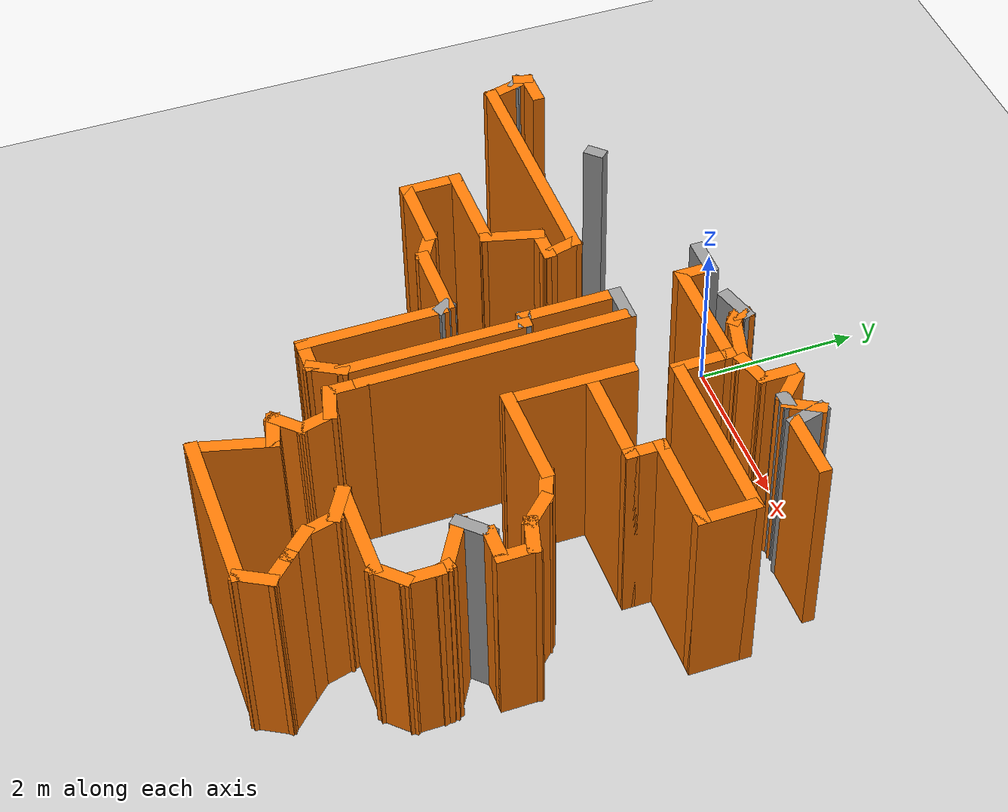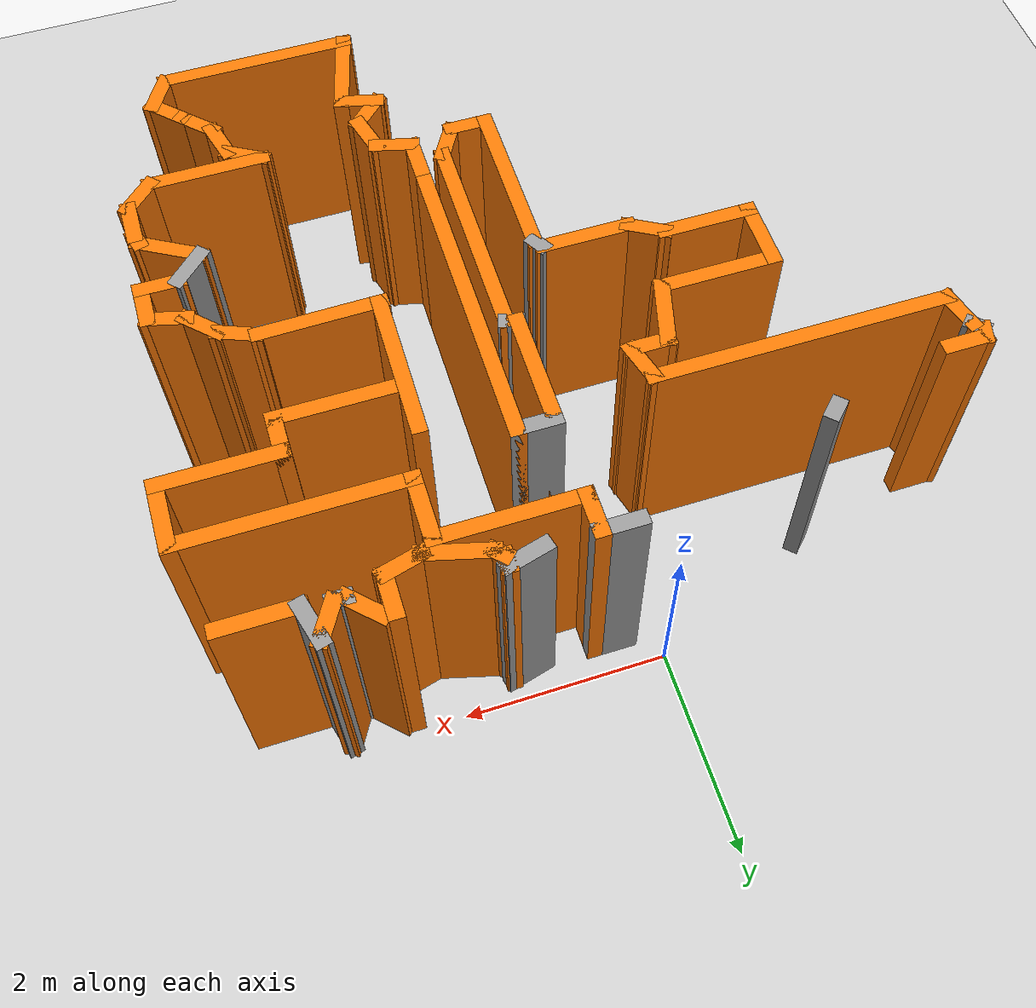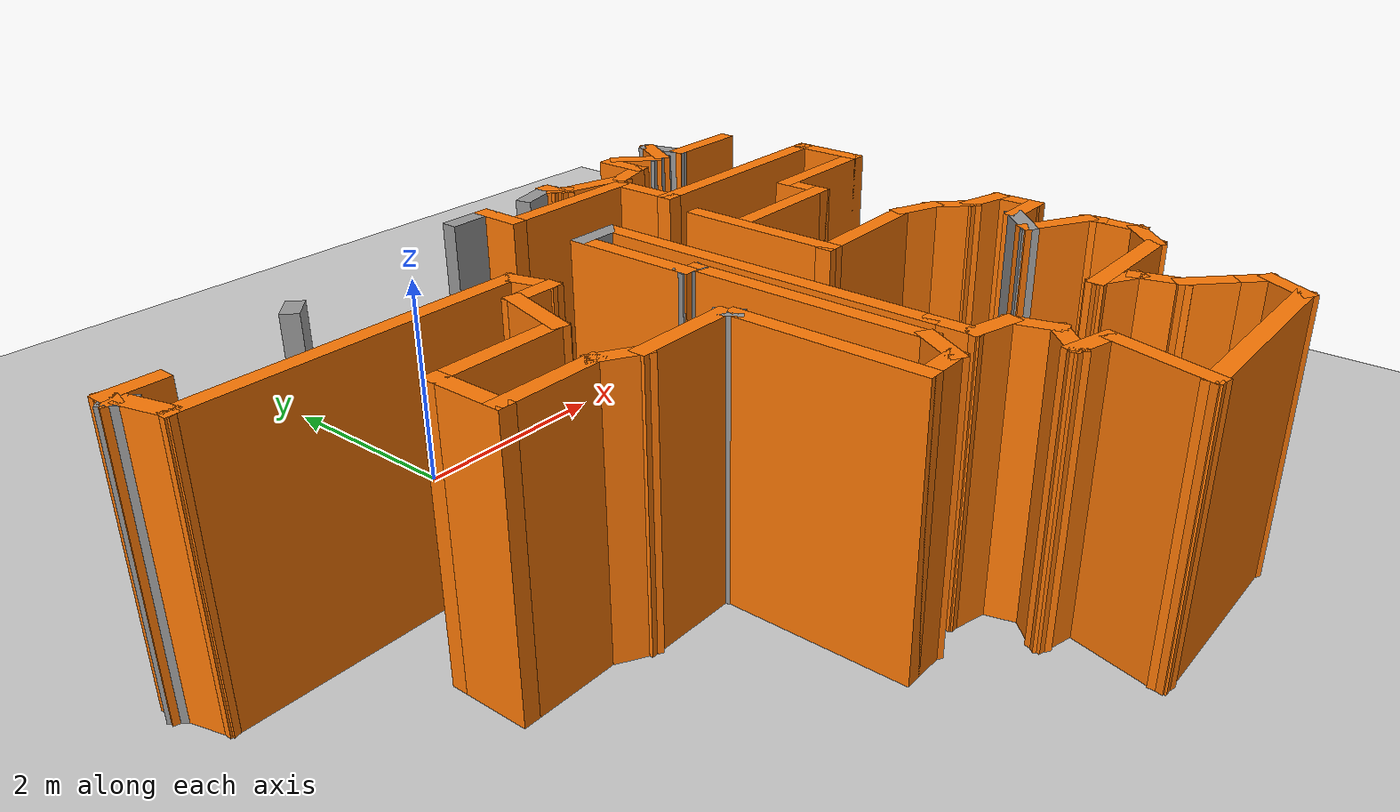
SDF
<sdf version="1.7">
 <world name="default">
  <model name="ground_plane">
   <static>1</static>
   <link name="link">
    <collision name="collision">
     <geometry><plane><normal>0 0 1</normal><size>100 100</size></plane></geometry>
     <surface>
      <contact><collide_bitmask>65535</collide_bitmask></contact>
      <friction><ode><mu>100</mu><mu2>50</mu2></ode></friction>
     </surface>
    </collision>
    <visual name="visual">
     <cast_shadows>0</cast_shadows>
     <geometry><plane><normal>0 0 1</normal><size>100 100</size></plane></geometry>
     <material>
      <script><uri>file://media/materials/scripts/gazebo.material</uri><name>Gazebo/Grey</name></script>
     </material>
    </visual>
   </link>
  </model>
  <model name="map_4">
   <pose>0.04124 -0.27835 0 0 -0 0</pose>
   <link name="Wall_100">
    <collision name="Wall_100_Collision">
     <geometry><box><size>0.5 0.15 2.5</size></box></geometry>
     <pose>0 0 1.25 0 -0 0</pose>
    </collision>
    <visual name="Wall_100_Visual">
     <pose>0 0 1.25 0 -0 0</pose>
     <geometry><box><size>0.5 0.15 2.5</size></box></geometry>
     <material>
      <script><uri>file://media/materials/scripts/gazebo.material</uri><name>Gazebo/Grey</name></script>
      <ambient>0.996078 0.47451 0.0196078 1</ambient>
     </material>
     <meta><layer>0</layer></meta>
    </visual>
    <pose>3.63966 -3.64447 0 0 -0 0</pose>
   </link>
   <link name="Wall_101">
    <collision name="Wall_101_Collision">
     <geometry><box><size>0.5 0.15 2.5</size></box></geometry>
     <pose>0 0 1.25 0 -0 0</pose>
    </collision>
    <visual name="Wall_101_Visual">
     <pose>0 0 1.25 0 -0 0</pose>
     <geometry><box><size>0.5 0.15 2.5</size></box></geometry>
     <material>
      <script><uri>file://media/materials/scripts/gazebo.material</uri><name>Gazebo/Grey</name></script>
      <ambient>0.996078 0.47451 0.0196078 1</ambient>
     </material>
     <meta><layer>0</layer></meta>
    </visual>
    <pose>3.81466 -3.46947 0 0 -0 1.5708</pose>
   </link>
   <link name="Wall_102">
    <collision name="Wall_102_Collision">
     <geometry><box><size>0.5 0.15 2.5</size></box></geometry>
     <pose>0 0 1.25 0 -0 0</pose>
    </collision>
    <visual name="Wall_102_Visual">
     <pose>0 0 1.25 0 -0 0</pose>
     <geometry><box><size>0.5 0.15 2.5</size></box></geometry>
     <material>
      <script><uri>file://media/materials/scripts/gazebo.material</uri><name>Gazebo/Grey</name></script>
      <ambient>0.996078 0.47451 0.0196078 1</ambient>
     </material>
     <meta><layer>0</layer></meta>
    </visual>
    <pose>3.64562 -3.24918 0 0 -0 2.87979</pose>
   </link>
   <link name="Wall_103">
    <collision name="Wall_103_Collision">
     <geometry><box><size>0.5 0.15 2.5</size></box></geometry>
     <pose>0 0 1.25 0 -0 0</pose>
    </collision>
    <visual name="Wall_103_Visual">
     <pose>0 0 1.25 0 -0 0</pose>
     <geometry><box><size>0.5 0.15 2.5</size></box></geometry>
     <material>
      <script><uri>file://media/materials/scripts/gazebo.material</uri><name>Gazebo/Grey</name></script>
      <ambient>0.996078 0.47451 0.0196078 1</ambient>
     </material>
     <meta><layer>0</layer></meta>
    </visual>
    <pose>3.35284 -3.08014 0 0 -0 2.35619</pose>
   </link>
   <link name="Wall_104">
    <collision name="Wall_104_Collision">
     <geometry><box><size>0.493604 0.15 2.5</size></box></geometry>
     <pose>0 0 1.25 0 -0 0</pose>
    </collision>
    <visual name="Wall_104_Visual">
     <pose>0 0 1.25 0 -0 0</pose>
     <geometry><box><size>0.493604 0.15 2.5</size></box></geometry>
     <material>
      <script><uri>file://media/materials/scripts/gazebo.material</uri><name>Gazebo/Grey</name></script>
      <ambient>0.996078 0.47451 0.0196078 1</ambient>
     </material>
     <meta><layer>0</layer></meta>
    </visual>
    <pose>3.06994 -2.89171 0 0 -0 2.75556</pose>
   </link>
   <link name="Wall_105">
    <collision name="Wall_105_Collision">
     <geometry><box><size>1.29573 0.15 2.5</size></box></geometry>
     <pose>0 0 1.25 0 -0 0</pose>
    </collision>
    <visual name="Wall_105_Visual">
     <pose>0 0 1.25 0 -0 0</pose>
     <geometry><box><size>1.29573 0.15 2.5</size></box></geometry>
     <material>
      <script><uri>file://media/materials/scripts/gazebo.material</uri><name>Gazebo/Grey</name></script>
      <ambient>0.996078 0.47451 0.0196078 1</ambient>
     </material>
     <meta><layer>0</layer></meta>
    </visual>
    <pose>2.32276 -2.83463 0 0 -0 -3.12832</pose>
   </link>
   <link name="Wall_106">
    <collision name="Wall_106_Collision">
     <geometry><box><size>1.54571 0.15 2.5</size></box></geometry>
     <pose>0 0 1.25 0 -0 0</pose>
    </collision>
    <visual name="Wall_106_Visual">
     <pose>0 0 1.25 0 -0 0</pose>
     <geometry><box><size>1.54571 0.15 2.5</size></box></geometry>
     <material>
      <script><uri>file://media/materials/scripts/gazebo.material</uri><name>Gazebo/Grey</name></script>
      <ambient>0.996078 0.47451 0.0196078 1</ambient>
     </material>
     <meta><layer>0</layer></meta>
    </visual>
    <pose>1.77276 -2.14442 0 0 -0 1.5599</pose>
   </link>
   <link name="Wall_108">
    <collision name="Wall_108_Collision">
     <geometry><box><size>1.25 0.15 2.5</size></box></geometry>
     <pose>0 0 1.25 0 -0 0</pose>
    </collision>
    <visual name="Wall_108_Visual">
     <pose>0 0 1.25 0 -0 0</pose>
     <geometry><box><size>1.25 0.15 2.5</size></box></geometry>
     <material>
      <script><uri>file://media/materials/scripts/gazebo.material</uri><name>Gazebo/Grey</name></script>
      <ambient>0.996078 0.47451 0.0196078 1</ambient>
     </material>
     <meta><layer>0</layer></meta>
    </visual>
    <pose>2.40475 -1.90642 0 0 -0 0</pose>
   </link>
   <link name="Wall_109">
    <collision name="Wall_109_Collision">
     <geometry><box><size>0.5 0.15 2.5</size></box></geometry>
     <pose>0 0 1.25 0 -0 0</pose>
    </collision>
    <visual name="Wall_109_Visual">
     <pose>0 0 1.25 0 -0 0</pose>
     <geometry><box><size>0.5 0.15 2.5</size></box></geometry>
     <material>
      <script><uri>file://media/materials/scripts/gazebo.material</uri><name>Gazebo/Grey</name></script>
      <ambient>0.996078 0.47451 0.0196078 1</ambient>
     </material>
     <meta><layer>0</layer></meta>
    </visual>
    <pose>2.95475 -1.73142 0 0 -0 1.5708</pose>
   </link>
   <link name="Wall_110">
    <collision name="Wall_110_Collision">
     <geometry><box><size>1.25 0.15 2.5</size></box></geometry>
     <pose>0 0 1.25 0 -0 0</pose>
    </collision>
    <visual name="Wall_110_Visual">
     <pose>0 0 1.25 0 -0 0</pose>
     <geometry><box><size>1.25 0.15 2.5</size></box></geometry>
     <material>
      <script><uri>file://media/materials/scripts/gazebo.material</uri><name>Gazebo/Grey</name></script>
      <ambient>0.996078 0.47451 0.0196078 1</ambient>
     </material>
     <meta><layer>0</layer></meta>
    </visual>
    <pose>3.50475 -1.55642 0 0 -0 0</pose>
   </link>
   <link name="Wall_111">
    <collision name="Wall_111_Collision">
     <geometry><box><size>0.75 0.15 2.5</size></box></geometry>
     <pose>0 0 1.25 0 -0 0</pose>
    </collision>
    <visual name="Wall_111_Visual">
     <pose>0 0 1.25 0 -0 0</pose>
     <geometry><box><size>0.75 0.15 2.5</size></box></geometry>
     <material>
      <script><uri>file://media/materials/scripts/gazebo.material</uri><name>Gazebo/Grey</name></script>
      <ambient>0.996078 0.47451 0.0196078 1</ambient>
     </material>
     <meta><layer>0</layer></meta>
    </visual>
    <pose>4.05475 -1.25642 0 0 -0 1.5708</pose>
   </link>
   <link name="Wall_112">
    <collision name="Wall_112_Collision">
     <geometry><box><size>2.25 0.15 2.5</size></box></geometry>
     <pose>0 0 1.25 0 -0 0</pose>
    </collision>
    <visual name="Wall_112_Visual">
     <pose>0 0 1.25 0 -0 0</pose>
     <geometry><box><size>2.25 0.15 2.5</size></box></geometry>
     <material>
      <script><uri>file://media/materials/scripts/gazebo.material</uri><name>Gazebo/Grey</name></script>
      <ambient>0.996078 0.47451 0.0196078 1</ambient>
     </material>
     <meta><layer>0</layer></meta>
    </visual>
    <pose>3.00475 -0.956422 0 0 -0 3.14159</pose>
   </link>
   <link name="Wall_114">
    <collision name="Wall_114_Collision">
     <geometry><box><size>0.75 0.15 2.5</size></box></geometry>
     <pose>0 0 1.25 0 -0 0</pose>
    </collision>
    <visual name="Wall_114_Visual">
     <pose>0 0 1.25 0 -0 0</pose>
     <geometry><box><size>0.75 0.15 2.5</size></box></geometry>
     <material>
      <script><uri>file://media/materials/scripts/gazebo.material</uri><name>Gazebo/Grey</name></script>
      <ambient>0.996078 0.47451 0.0196078 1</ambient>
     </material>
     <meta><layer>0</layer></meta>
    </visual>
    <pose>1.95475 -0.656423 0 0 -0 1.5708</pose>
   </link>
   <link name="Wall_115">
    <collision name="Wall_115_Collision">
     <geometry><box><size>1.5 0.15 2.5</size></box></geometry>
     <pose>0 0 1.25 0 -0 0</pose>
    </collision>
    <visual name="Wall_115_Visual">
     <pose>0 0 1.25 0 -0 0</pose>
     <geometry><box><size>1.5 0.15 2.5</size></box></geometry>
     <material>
      <script><uri>file://media/materials/scripts/gazebo.material</uri><name>Gazebo/Grey</name></script>
      <ambient>0.996078 0.47451 0.0196078 1</ambient>
     </material>
     <meta><layer>0</layer></meta>
    </visual>
    <pose>1.27975 -0.356422 0 0 -0 3.14159</pose>
   </link>
   <link name="Wall_116">
    <collision name="Wall_116_Collision">
     <geometry><box><size>0.5 0.15 2.5</size></box></geometry>
     <pose>0 0 1.25 0 -0 0</pose>
    </collision>
    <visual name="Wall_116_Visual">
     <pose>0 0 1.25 0 -0 0</pose>
     <geometry><box><size>0.5 0.15 2.5</size></box></geometry>
     <material>
      <script><uri>file://media/materials/scripts/gazebo.material</uri><name>Gazebo/Grey</name></script>
      <ambient>0.996078 0.47451 0.0196078 1</ambient>
     </material>
     <meta><layer>0</layer></meta>
    </visual>
    <pose>0.604748 -0.181422 0 0 -0 1.5708</pose>
   </link>
   <link name="Wall_117">
    <collision name="Wall_117_Collision">
     <geometry><box><size>0.5 0.15 2.5</size></box></geometry>
     <pose>0 0 1.25 0 -0 0</pose>
    </collision>
    <visual name="Wall_117_Visual">
     <pose>0 0 1.25 0 -0 0</pose>
     <geometry><box><size>0.5 0.15 2.5</size></box></geometry>
     <material>
      <script><uri>file://media/materials/scripts/gazebo.material</uri><name>Gazebo/Grey</name></script>
      <ambient>1 1 1 1</ambient>
     </material>
     <meta><layer>0</layer></meta>
    </visual>
    <pose>0.429748 -0.006423 0 0 -0 3.14159</pose>
   </link>
   <link name="Wall_126">
    <collision name="Wall_126_Collision">
     <geometry><box><size>0.5 0.15 2.5</size></box></geometry>
     <pose>0 0 1.25 0 -0 0</pose>
    </collision>
    <visual name="Wall_126_Visual">
     <pose>0 0 1.25 0 -0 0</pose>
     <geometry><box><size>0.5 0.15 2.5</size></box></geometry>
     <material>
      <script><uri>file://media/materials/scripts/gazebo.material</uri><name>Gazebo/Grey</name></script>
      <ambient>1 1 1 1</ambient>
     </material>
     <meta><layer>0</layer></meta>
    </visual>
    <pose>1.26186 0.029458 0 0 -0 0.261799</pose>
   </link>
   <link name="Wall_129">
    <collision name="Wall_129_Collision">
     <geometry><box><size>0.25 0.15 2.5</size></box></geometry>
     <pose>0 0 1.25 0 -0 0</pose>
    </collision>
    <visual name="Wall_129_Visual">
     <pose>0 0 1.25 0 -0 0</pose>
     <geometry><box><size>0.25 0.15 2.5</size></box></geometry>
     <material>
      <script><uri>file://media/materials/scripts/gazebo.material</uri><name>Gazebo/Grey</name></script>
      <ambient>0.996078 0.47451 0.0196078 1</ambient>
     </material>
     <meta><layer>0</layer></meta>
    </visual>
    <pose>1.4309 0.024751 0 0 -0 -1.5708</pose>
   </link>
   <link name="Wall_130">
    <collision name="Wall_130_Collision">
     <geometry><box><size>0.25 0.15 2.5</size></box></geometry>
     <pose>0 0 1.25 0 -0 0</pose>
    </collision>
    <visual name="Wall_130_Visual">
     <pose>0 0 1.25 0 -0 0</pose>
     <geometry><box><size>0.25 0.15 2.5</size></box></geometry>
     <material>
      <script><uri>file://media/materials/scripts/gazebo.material</uri><name>Gazebo/Grey</name></script>
      <ambient>0.996078 0.47451 0.0196078 1</ambient>
     </material>
     <meta><layer>0</layer></meta>
    </visual>
    <pose>1.46625 -0.060605 0 0 -0 -0.785398</pose>
   </link>
   <link name="Wall_131">
    <collision name="Wall_131_Collision">
     <geometry><box><size>0.75 0.15 2.5</size></box></geometry>
     <pose>0 0 1.25 0 -0 0</pose>
    </collision>
    <visual name="Wall_131_Visual">
     <pose>0 0 1.25 0 -0 0</pose>
     <geometry><box><size>0.75 0.15 2.5</size></box></geometry>
     <material>
      <script><uri>file://media/materials/scripts/gazebo.material</uri><name>Gazebo/Grey</name></script>
      <ambient>0.996078 0.47451 0.0196078 1</ambient>
     </material>
     <meta><layer>0</layer></meta>
    </visual>
    <pose>1.79138 -0.173606 0 0 -0 -0.261799</pose>
   </link>
   <link name="Wall_132">
    <collision name="Wall_132_Collision">
     <geometry><box><size>0.5 0.15 2.5</size></box></geometry>
     <pose>0 0 1.25 0 -0 0</pose>
    </collision>
    <visual name="Wall_132_Visual">
     <pose>0 0 1.25 0 -0 0</pose>
     <geometry><box><size>0.5 0.15 2.5</size></box></geometry>
     <material>
      <script><uri>file://media/materials/scripts/gazebo.material</uri><name>Gazebo/Grey</name></script>
      <ambient>0.996078 0.47451 0.0196078 1</ambient>
     </material>
     <meta><layer>0</layer></meta>
    </visual>
    <pose>2.2502 -0.205958 0 0 -0 0.261799</pose>
   </link>
   <link name="Wall_133">
    <collision name="Wall_133_Collision">
     <geometry><box><size>0.5 0.15 2.5</size></box></geometry>
     <pose>0 0 1.25 0 -0 0</pose>
    </collision>
    <visual name="Wall_133_Visual">
     <pose>0 0 1.25 0 -0 0</pose>
     <geometry><box><size>0.5 0.15 2.5</size></box></geometry>
     <material>
      <script><uri>file://media/materials/scripts/gazebo.material</uri><name>Gazebo/Grey</name></script>
      <ambient>0.996078 0.47451 0.0196078 1</ambient>
     </material>
     <meta><layer>0</layer></meta>
    </visual>
    <pose>2.41924 0.014336 0 0 -0 1.5708</pose>
   </link>
   <link name="Wall_135">
    <collision name="Wall_135_Collision">
     <geometry><box><size>0.5 0.15 2.5</size></box></geometry>
     <pose>0 0 1.25 0 -0 0</pose>
    </collision>
    <visual name="Wall_135_Visual">
     <pose>0 0 1.25 0 -0 0</pose>
     <geometry><box><size>0.5 0.15 2.5</size></box></geometry>
     <material>
      <script><uri>file://media/materials/scripts/gazebo.material</uri><name>Gazebo/Grey</name></script>
      <ambient>0.996078 0.47451 0.0196078 1</ambient>
     </material>
     <meta><layer>0</layer></meta>
    </visual>
    <pose>2.64298 0.065592 0 0 -0 -0.785398</pose>
   </link>
   <link name="Wall_136">
    <collision name="Wall_136_Collision">
     <geometry><box><size>0.25 0.15 2.5</size></box></geometry>
     <pose>0 0 1.25 0 -0 0</pose>
    </collision>
    <visual name="Wall_136_Visual">
     <pose>0 0 1.25 0 -0 0</pose>
     <geometry><box><size>0.25 0.15 2.5</size></box></geometry>
     <material>
      <script><uri>file://media/materials/scripts/gazebo.material</uri><name>Gazebo/Grey</name></script>
      <ambient>1 1 1 1</ambient>
     </material>
     <meta><layer>0</layer></meta>
    </visual>
    <pose>2.81672 -0.058152 0 0 -0 0</pose>
   </link>
   <link name="Wall_137">
    <collision name="Wall_137_Collision">
     <geometry><box><size>0.5 0.15 2.5</size></box></geometry>
     <pose>0 0 1.25 0 -0 0</pose>
    </collision>
    <visual name="Wall_137_Visual">
     <pose>0 0 1.25 0 -0 0</pose>
     <geometry><box><size>0.5 0.15 2.5</size></box></geometry>
     <material>
      <script><uri>file://media/materials/scripts/gazebo.material</uri><name>Gazebo/Grey</name></script>
      <ambient>0.996078 0.47451 0.0196078 1</ambient>
     </material>
     <meta><layer>0</layer></meta>
    </visual>
    <pose>2.95422 0.093402 0 0 -0 1.0472</pose>
   </link>
   <link name="Wall_138">
    <collision name="Wall_138_Collision">
     <geometry><box><size>0.5 0.15 2.5</size></box></geometry>
     <pose>0 0 1.25 0 -0 0</pose>
    </collision>
    <visual name="Wall_138_Visual">
     <pose>0 0 1.25 0 -0 0</pose>
     <geometry><box><size>0.5 0.15 2.5</size></box></geometry>
     <material>
      <script><uri>file://media/materials/scripts/gazebo.material</uri><name>Gazebo/Grey</name></script>
      <ambient>1 1 1 1</ambient>
     </material>
     <meta><layer>0</layer></meta>
    </visual>
    <pose>3.08702 0.07592 0 0 -0 -1.309</pose>
   </link>
   <link name="Wall_139">
    <collision name="Wall_139_Collision">
     <geometry><box><size>0.842522 0.15 2.5</size></box></geometry>
     <pose>0 0 1.25 0 -0 0</pose>
    </collision>
    <visual name="Wall_139_Visual">
     <pose>0 0 1.25 0 -0 0</pose>
     <geometry><box><size>0.842522 0.15 2.5</size></box></geometry>
     <material>
      <script><uri>file://media/materials/scripts/gazebo.material</uri><name>Gazebo/Grey</name></script>
      <ambient>0.996078 0.47451 0.0196078 1</ambient>
     </material>
     <meta><layer>0</layer></meta>
    </visual>
    <pose>3.47857 -0.093117 0 0 -0 0</pose>
   </link>
   <link name="Wall_182">
    <collision name="Wall_182_Collision">
     <geometry><box><size>0.25 0.15 2.5</size></box></geometry>
     <pose>0 0 1.25 0 -0 0</pose>
    </collision>
    <visual name="Wall_182_Visual">
     <pose>0 0 1.25 0 -0 0</pose>
     <geometry><box><size>0.25 0.15 2.5</size></box></geometry>
     <material>
      <script><uri>file://media/materials/scripts/gazebo.material</uri><name>Gazebo/Grey</name></script>
      <ambient>1 1 1 1</ambient>
     </material>
     <meta><layer>0</layer></meta>
    </visual>
    <pose>-1.73175 -0.506693 0 0 -0 -2.35619</pose>
   </link>
   <link name="Wall_47">
    <collision name="Wall_47_Collision">
     <geometry><box><size>0.5 0.15 2.5</size></box></geometry>
     <pose>0 0 1.25 0 -0 0</pose>
    </collision>
    <visual name="Wall_47_Visual">
     <pose>0 0 1.25 0 -0 0</pose>
     <geometry><box><size>0.5 0.15 2.5</size></box></geometry>
     <material>
      <script><uri>file://media/materials/scripts/gazebo.material</uri><name>Gazebo/Grey</name></script>
      <ambient>0.996078 0.47451 0.0196078 1</ambient>
     </material>
     <meta><layer>0</layer></meta>
    </visual>
    <pose>-3.14762 -0.803808 0 0 -0 3.14159</pose>
   </link>
   <link name="Wall_48">
    <collision name="Wall_48_Collision">
     <geometry><box><size>0.25 0.15 2.5</size></box></geometry>
     <pose>0 0 1.25 0 -0 0</pose>
    </collision>
    <visual name="Wall_48_Visual">
     <pose>0 0 1.25 0 -0 0</pose>
     <geometry><box><size>0.25 0.15 2.5</size></box></geometry>
     <material>
      <script><uri>file://media/materials/scripts/gazebo.material</uri><name>Gazebo/Grey</name></script>
      <ambient>0.996078 0.47451 0.0196078 1</ambient>
     </material>
     <meta><layer>0</layer></meta>
    </visual>
    <pose>-3.33556 -0.852104 0 0 -0 -1.8326</pose>
   </link>
   <link name="Wall_49">
    <collision name="Wall_49_Collision">
     <geometry><box><size>0.25 0.15 2.5</size></box></geometry>
     <pose>0 0 1.25 0 -0 0</pose>
    </collision>
    <visual name="Wall_49_Visual">
     <pose>0 0 1.25 0 -0 0</pose>
     <geometry><box><size>0.25 0.15 2.5</size></box></geometry>
     <material>
      <script><uri>file://media/materials/scripts/gazebo.material</uri><name>Gazebo/Grey</name></script>
      <ambient>1 1 1 1</ambient>
     </material>
     <meta><layer>0</layer></meta>
    </visual>
    <pose>-3.31315 -0.935756 0 0 -0 -0.785398</pose>
   </link>
   <link name="Wall_50">
    <collision name="Wall_50_Collision">
     <geometry><box><size>0.5 0.15 2.5</size></box></geometry>
     <pose>0 0 1.25 0 -0 0</pose>
    </collision>
    <visual name="Wall_50_Visual">
     <pose>0 0 1.25 0 -0 0</pose>
     <geometry><box><size>0.5 0.15 2.5</size></box></geometry>
     <material>
      <script><uri>file://media/materials/scripts/gazebo.material</uri><name>Gazebo/Grey</name></script>
      <ambient>0.996078 0.47451 0.0196078 1</ambient>
     </material>
     <meta><layer>0</layer></meta>
    </visual>
    <pose>-3.2325 -1.14015 0 0 -0 -1.309</pose>
   </link>
   <link name="Wall_51">
    <collision name="Wall_51_Collision">
     <geometry><box><size>3 0.15 2.5</size></box></geometry>
     <pose>0 0 1.25 0 -0 0</pose>
    </collision>
    <visual name="Wall_51_Visual">
     <pose>0 0 1.25 0 -0 0</pose>
     <geometry><box><size>3 0.15 2.5</size></box></geometry>
     <material>
      <script><uri>file://media/materials/scripts/gazebo.material</uri><name>Gazebo/Grey</name></script>
      <ambient>0.996078 0.47451 0.0196078 1</ambient>
     </material>
     <meta><layer>0</layer></meta>
    </visual>
    <pose>-1.76221 -1.30919 0 0 -0 0</pose>
   </link>
   <link name="Wall_52">
    <collision name="Wall_52_Collision">
     <geometry><box><size>0.5 0.15 2.5</size></box></geometry>
     <pose>0 0 1.25 0 -0 0</pose>
    </collision>
    <visual name="Wall_52_Visual">
     <pose>0 0 1.25 0 -0 0</pose>
     <geometry><box><size>0.5 0.15 2.5</size></box></geometry>
     <material>
      <script><uri>file://media/materials/scripts/gazebo.material</uri><name>Gazebo/Grey</name></script>
      <ambient>0.996078 0.47451 0.0196078 1</ambient>
     </material>
     <meta><layer>0</layer></meta>
    </visual>
    <pose>-0.291915 -1.47822 0 0 -0 -1.309</pose>
   </link>
   <link name="Wall_53">
    <collision name="Wall_53_Collision">
     <geometry><box><size>0.5 0.15 2.5</size></box></geometry>
     <pose>0 0 1.25 0 -0 0</pose>
    </collision>
    <visual name="Wall_53_Visual">
     <pose>0 0 1.25 0 -0 0</pose>
     <geometry><box><size>0.5 0.15 2.5</size></box></geometry>
     <material>
      <script><uri>file://media/materials/scripts/gazebo.material</uri><name>Gazebo/Grey</name></script>
      <ambient>0.996078 0.47451 0.0196078 1</ambient>
     </material>
     <meta><layer>0</layer></meta>
    </visual>
    <pose>-0.421622 -1.64726 0 0 -0 3.14159</pose>
   </link>
   <link name="Wall_54">
    <collision name="Wall_54_Collision">
     <geometry><box><size>0.75 0.15 2.5</size></box></geometry>
     <pose>0 0 1.25 0 -0 0</pose>
    </collision>
    <visual name="Wall_54_Visual">
     <pose>0 0 1.25 0 -0 0</pose>
     <geometry><box><size>0.75 0.15 2.5</size></box></geometry>
     <material>
      <script><uri>file://media/materials/scripts/gazebo.material</uri><name>Gazebo/Grey</name></script>
      <ambient>0.996078 0.47451 0.0196078 1</ambient>
     </material>
     <meta><layer>0</layer></meta>
    </visual>
    <pose>-0.674268 -1.93704 0 0 -0 -1.8326</pose>
   </link>
   <link name="Wall_55">
    <collision name="Wall_55_Collision">
     <geometry><box><size>1.25 0.15 2.5</size></box></geometry>
     <pose>0 0 1.25 0 -0 0</pose>
    </collision>
    <visual name="Wall_55_Visual">
     <pose>0 0 1.25 0 -0 0</pose>
     <geometry><box><size>1.25 0.15 2.5</size></box></geometry>
     <material>
      <script><uri>file://media/materials/scripts/gazebo.material</uri><name>Gazebo/Grey</name></script>
      <ambient>0.996078 0.47451 0.0196078 1</ambient>
     </material>
     <meta><layer>0</layer></meta>
    </visual>
    <pose>-1.30191 -2.22681 0 0 -0 3.14159</pose>
   </link>
   <link name="Wall_60">
    <collision name="Wall_60_Collision">
     <geometry><box><size>0.75 0.15 2.5</size></box></geometry>
     <pose>0 0 1.25 0 -0 0</pose>
    </collision>
    <visual name="Wall_60_Visual">
     <pose>0 0 1.25 0 -0 0</pose>
     <geometry><box><size>0.75 0.15 2.5</size></box></geometry>
     <material>
      <script><uri>file://media/materials/scripts/gazebo.material</uri><name>Gazebo/Grey</name></script>
      <ambient>0.996078 0.47451 0.0196078 1</ambient>
     </material>
     <meta><layer>0</layer></meta>
    </visual>
    <pose>-1.85191 -2.52682 0 0 -0 -1.5708</pose>
   </link>
   <link name="Wall_61">
    <collision name="Wall_61_Collision">
     <geometry><box><size>1 0.15 2.5</size></box></geometry>
     <pose>0 0 1.25 0 -0 0</pose>
    </collision>
    <visual name="Wall_61_Visual">
     <pose>0 0 1.25 0 -0 0</pose>
     <geometry><box><size>1 0.15 2.5</size></box></geometry>
     <material>
      <script><uri>file://media/materials/scripts/gazebo.material</uri><name>Gazebo/Grey</name></script>
      <ambient>0.996078 0.47451 0.0196078 1</ambient>
     </material>
     <meta><layer>0</layer></meta>
    </visual>
    <pose>-1.42691 -2.82681 0 0 -0 0</pose>
   </link>
   <link name="Wall_62">
    <collision name="Wall_62_Collision">
     <geometry><box><size>0.5 0.15 2.5</size></box></geometry>
     <pose>0 0 1.25 0 -0 0</pose>
    </collision>
    <visual name="Wall_62_Visual">
     <pose>0 0 1.25 0 -0 0</pose>
     <geometry><box><size>0.5 0.15 2.5</size></box></geometry>
     <material>
      <script><uri>file://media/materials/scripts/gazebo.material</uri><name>Gazebo/Grey</name></script>
      <ambient>0.996078 0.47451 0.0196078 1</ambient>
     </material>
     <meta><layer>0</layer></meta>
    </visual>
    <pose>-0.850359 -2.91431 0 0 -0 -0.523599</pose>
   </link>
   <link name="Wall_68">
    <collision name="Wall_68_Collision">
     <geometry><box><size>1 0.15 2.5</size></box></geometry>
     <pose>0 0 1.25 0 -0 0</pose>
    </collision>
    <visual name="Wall_68_Visual">
     <pose>0 0 1.25 0 -0 0</pose>
     <geometry><box><size>1 0.15 2.5</size></box></geometry>
     <material>
      <script><uri>file://media/materials/scripts/gazebo.material</uri><name>Gazebo/Grey</name></script>
      <ambient>0.996078 0.47451 0.0196078 1</ambient>
     </material>
     <meta><layer>0</layer></meta>
    </visual>
    <pose>-0.273804 -3.00182 0 0 -0 0</pose>
   </link>
   <link name="Wall_69">
    <collision name="Wall_69_Collision">
     <geometry><box><size>0.25 0.15 2.5</size></box></geometry>
     <pose>0 0 1.25 0 -0 0</pose>
    </collision>
    <visual name="Wall_69_Visual">
     <pose>0 0 1.25 0 -0 0</pose>
     <geometry><box><size>0.25 0.15 2.5</size></box></geometry>
     <material>
      <script><uri>file://media/materials/scripts/gazebo.material</uri><name>Gazebo/Grey</name></script>
      <ambient>1 1 1 1</ambient>
     </material>
     <meta><layer>0</layer></meta>
    </visual>
    <pose>0.176196 -3.04512 0 0 -0 -1.0472</pose>
   </link>
   <link name="Wall_70">
    <collision name="Wall_70_Collision">
     <geometry><box><size>1.75 0.15 2.5</size></box></geometry>
     <pose>0 0 1.25 0 -0 0</pose>
    </collision>
    <visual name="Wall_70_Visual">
     <pose>0 0 1.25 0 -0 0</pose>
     <geometry><box><size>1.75 0.15 2.5</size></box></geometry>
     <material>
      <script><uri>file://media/materials/scripts/gazebo.material</uri><name>Gazebo/Grey</name></script>
      <ambient>0.996078 0.47451 0.0196078 1</ambient>
     </material>
     <meta><layer>0</layer></meta>
    </visual>
    <pose>0.201195 -3.88842 0 0 -0 -1.5708</pose>
   </link>
   <link name="Wall_73">
    <collision name="Wall_73_Collision">
     <geometry><box><size>0.5 0.15 2.5</size></box></geometry>
     <pose>0 0 1.25 0 -0 0</pose>
    </collision>
    <visual name="Wall_73_Visual">
     <pose>0 0 1.25 0 -0 0</pose>
     <geometry><box><size>0.5 0.15 2.5</size></box></geometry>
     <material>
      <script><uri>file://media/materials/scripts/gazebo.material</uri><name>Gazebo/Grey</name></script>
      <ambient>0.996078 0.47451 0.0196078 1</ambient>
     </material>
     <meta><layer>0</layer></meta>
    </visual>
    <pose>0.376195 -4.68842 0 0 -0 0</pose>
   </link>
   <link name="Wall_74">
    <collision name="Wall_74_Collision">
     <geometry><box><size>0.5 0.15 2.5</size></box></geometry>
     <pose>0 0 1.25 0 -0 0</pose>
    </collision>
    <visual name="Wall_74_Visual">
     <pose>0 0 1.25 0 -0 0</pose>
     <geometry><box><size>0.5 0.15 2.5</size></box></geometry>
     <material>
      <script><uri>file://media/materials/scripts/gazebo.material</uri><name>Gazebo/Grey</name></script>
      <ambient>0.996078 0.47451 0.0196078 1</ambient>
     </material>
     <meta><layer>0</layer></meta>
    </visual>
    <pose>0.638695 -4.53686 0 0 -0 1.0472</pose>
   </link>
   <link name="Wall_75">
    <collision name="Wall_75_Collision">
     <geometry><box><size>2.25 0.15 2.5</size></box></geometry>
     <pose>0 0 1.25 0 -0 0</pose>
    </collision>
    <visual name="Wall_75_Visual">
     <pose>0 0 1.25 0 -0 0</pose>
     <geometry><box><size>2.25 0.15 2.5</size></box></geometry>
     <material>
      <script><uri>file://media/materials/scripts/gazebo.material</uri><name>Gazebo/Grey</name></script>
      <ambient>0.996078 0.47451 0.0196078 1</ambient>
     </material>
     <meta><layer>0</layer></meta>
    </visual>
    <pose>0.726195 -3.33531 0 0 -0 1.5708</pose>
   </link>
   <link name="Wall_76">
    <collision name="Wall_76_Collision">
     <geometry><box><size>0.25 0.15 2.5</size></box></geometry>
     <pose>0 0 1.25 0 -0 0</pose>
    </collision>
    <visual name="Wall_76_Visual">
     <pose>0 0 1.25 0 -0 0</pose>
     <geometry><box><size>0.25 0.15 2.5</size></box></geometry>
     <material>
      <script><uri>file://media/materials/scripts/gazebo.material</uri><name>Gazebo/Grey</name></script>
      <ambient>1 1 1 1</ambient>
     </material>
     <meta><layer>0</layer></meta>
    </visual>
    <pose>0.677899 -2.27237 0 0 -0 2.87979</pose>
   </link>
   <link name="Wall_77">
    <collision name="Wall_77_Collision">
     <geometry><box><size>1.25 0.15 2.5</size></box></geometry>
     <pose>0 0 1.25 0 -0 0</pose>
    </collision>
    <visual name="Wall_77_Visual">
     <pose>0 0 1.25 0 -0 0</pose>
     <geometry><box><size>1.25 0.15 2.5</size></box></geometry>
     <material>
      <script><uri>file://media/materials/scripts/gazebo.material</uri><name>Gazebo/Grey</name></script>
      <ambient>0.996078 0.47451 0.0196078 1</ambient>
     </material>
     <meta><layer>0</layer></meta>
    </visual>
    <pose>0.629603 -1.70943 0 0 -0 1.5708</pose>
   </link>
   <link name="Wall_78">
    <collision name="Wall_78_Collision">
     <geometry><box><size>0.5 0.15 2.5</size></box></geometry>
     <pose>0 0 1.25 0 -0 0</pose>
    </collision>
    <visual name="Wall_78_Visual">
     <pose>0 0 1.25 0 -0 0</pose>
     <geometry><box><size>0.5 0.15 2.5</size></box></geometry>
     <material>
      <script><uri>file://media/materials/scripts/gazebo.material</uri><name>Gazebo/Grey</name></script>
      <ambient>1 1 1 1</ambient>
     </material>
     <meta><layer>0</layer></meta>
    </visual>
    <pose>0.804603 -1.15943 0 0 -0 0</pose>
   </link>
   <link name="Wall_79">
    <collision name="Wall_79_Collision">
     <geometry><box><size>3.25 0.15 2.5</size></box></geometry>
     <pose>0 0 1.25 0 -0 0</pose>
    </collision>
    <visual name="Wall_79_Visual">
     <pose>0 0 1.25 0 -0 0</pose>
     <geometry><box><size>3.25 0.15 2.5</size></box></geometry>
     <material>
      <script><uri>file://media/materials/scripts/gazebo.material</uri><name>Gazebo/Grey</name></script>
      <ambient>0.996078 0.47451 0.0196078 1</ambient>
     </material>
     <meta><layer>0</layer></meta>
    </visual>
    <pose>0.979603 -2.70943 0 0 -0 -1.5708</pose>
   </link>
   <link name="Wall_80">
    <collision name="Wall_80_Collision">
     <geometry><box><size>0.5 0.15 2.5</size></box></geometry>
     <pose>0 0 1.25 0 -0 0</pose>
    </collision>
    <visual name="Wall_80_Visual">
     <pose>0 0 1.25 0 -0 0</pose>
     <geometry><box><size>0.5 0.15 2.5</size></box></geometry>
     <material>
      <script><uri>file://media/materials/scripts/gazebo.material</uri><name>Gazebo/Grey</name></script>
      <ambient>0.996078 0.47451 0.0196078 1</ambient>
     </material>
     <meta><layer>0</layer></meta>
    </visual>
    <pose>0.979603 -4.43443 0 0 -0 -1.5708</pose>
   </link>
   <link name="Wall_81">
    <collision name="Wall_81_Collision">
     <geometry><box><size>0.5 0.15 2.5</size></box></geometry>
     <pose>0 0 1.25 0 -0 0</pose>
    </collision>
    <visual name="Wall_81_Visual">
     <pose>0 0 1.25 0 -0 0</pose>
     <geometry><box><size>0.5 0.15 2.5</size></box></geometry>
     <material>
      <script><uri>file://media/materials/scripts/gazebo.material</uri><name>Gazebo/Grey</name></script>
      <ambient>0.996078 0.47451 0.0196078 1</ambient>
     </material>
     <meta><layer>0</layer></meta>
    </visual>
    <pose>1.14864 -4.65472 0 0 -0 -0.261799</pose>
   </link>
   <link name="Wall_82">
    <collision name="Wall_82_Collision">
     <geometry><box><size>0.5 0.15 2.5</size></box></geometry>
     <pose>0 0 1.25 0 -0 0</pose>
    </collision>
    <visual name="Wall_82_Visual">
     <pose>0 0 1.25 0 -0 0</pose>
     <geometry><box><size>0.5 0.15 2.5</size></box></geometry>
     <material>
      <script><uri>file://media/materials/scripts/gazebo.material</uri><name>Gazebo/Grey</name></script>
      <ambient>0.996078 0.47451 0.0196078 1</ambient>
     </material>
     <meta><layer>0</layer></meta>
    </visual>
    <pose>1.36297 -4.86905 0 0 -0 -1.309</pose>
   </link>
   <link name="Wall_83">
    <collision name="Wall_83_Collision">
     <geometry><box><size>0.5 0.15 2.5</size></box></geometry>
     <pose>0 0 1.25 0 -0 0</pose>
    </collision>
    <visual name="Wall_83_Visual">
     <pose>0 0 1.25 0 -0 0</pose>
     <geometry><box><size>0.5 0.15 2.5</size></box></geometry>
     <material>
      <script><uri>file://media/materials/scripts/gazebo.material</uri><name>Gazebo/Grey</name></script>
      <ambient>0.996078 0.47451 0.0196078 1</ambient>
     </material>
     <meta><layer>0</layer></meta>
    </visual>
    <pose>1.28452 -5.16183 0 0 -0 -2.35619</pose>
   </link>
   <link name="Wall_84">
    <collision name="Wall_84_Collision">
     <geometry><box><size>0.5 0.15 2.5</size></box></geometry>
     <pose>0 0 1.25 0 -0 0</pose>
    </collision>
    <visual name="Wall_84_Visual">
     <pose>0 0 1.25 0 -0 0</pose>
     <geometry><box><size>0.5 0.15 2.5</size></box></geometry>
     <material>
      <script><uri>file://media/materials/scripts/gazebo.material</uri><name>Gazebo/Grey</name></script>
      <ambient>0.996078 0.47451 0.0196078 1</ambient>
     </material>
     <meta><layer>0</layer></meta>
    </visual>
    <pose>1.32981 -5.33087 0 0 -0 -0.261799</pose>
   </link>
   <link name="Wall_85">
    <collision name="Wall_85_Collision">
     <geometry><box><size>1 0.15 2.5</size></box></geometry>
     <pose>0 0 1.25 0 -0 0</pose>
    </collision>
    <visual name="Wall_85_Visual">
     <pose>0 0 1.25 0 -0 0</pose>
     <geometry><box><size>1 0.15 2.5</size></box></geometry>
     <material>
      <script><uri>file://media/materials/scripts/gazebo.material</uri><name>Gazebo/Grey</name></script>
      <ambient>0.996078 0.47451 0.0196078 1</ambient>
     </material>
     <meta><layer>0</layer></meta>
    </visual>
    <pose>1.38885 -5.78668 0 0 -0 -1.8326</pose>
   </link>
   <link name="Wall_86">
    <collision name="Wall_86_Collision">
     <geometry><box><size>2 0.15 2.5</size></box></geometry>
     <pose>0 0 1.25 0 -0 0</pose>
    </collision>
    <visual name="Wall_86_Visual">
     <pose>0 0 1.25 0 -0 0</pose>
     <geometry><box><size>2 0.15 2.5</size></box></geometry>
     <material>
      <script><uri>file://media/materials/scripts/gazebo.material</uri><name>Gazebo/Grey</name></script>
      <ambient>0.996078 0.47451 0.0196078 1</ambient>
     </material>
     <meta><layer>0</layer></meta>
    </visual>
    <pose>2.20385 -6.1972 0 0 -0 0</pose>
   </link>
   <link name="Wall_87">
    <collision name="Wall_87_Collision">
     <geometry><box><size>0.5 0.15 2.5</size></box></geometry>
     <pose>0 0 1.25 0 -0 0</pose>
    </collision>
    <visual name="Wall_87_Visual">
     <pose>0 0 1.25 0 -0 0</pose>
     <geometry><box><size>0.5 0.15 2.5</size></box></geometry>
     <material>
      <script><uri>file://media/materials/scripts/gazebo.material</uri><name>Gazebo/Grey</name></script>
      <ambient>0.996078 0.47451 0.0196078 1</ambient>
     </material>
     <meta><layer>0</layer></meta>
    </visual>
    <pose>3.21635 -6.04564 0 0 -0 1.0472</pose>
   </link>
   <link name="Wall_88">
    <collision name="Wall_88_Collision">
     <geometry><box><size>0.5 0.15 2.5</size></box></geometry>
     <pose>0 0 1.25 0 -0 0</pose>
    </collision>
    <visual name="Wall_88_Visual">
     <pose>0 0 1.25 0 -0 0</pose>
     <geometry><box><size>0.5 0.15 2.5</size></box></geometry>
     <material>
      <script><uri>file://media/materials/scripts/gazebo.material</uri><name>Gazebo/Grey</name></script>
      <ambient>0.996078 0.47451 0.0196078 1</ambient>
     </material>
     <meta><layer>0</layer></meta>
    </visual>
    <pose>3.18011 -5.77035 0 0 -0 2.35619</pose>
   </link>
   <link name="Wall_89">
    <collision name="Wall_89_Collision">
     <geometry><box><size>0.5 0.15 2.5</size></box></geometry>
     <pose>0 0 1.25 0 -0 0</pose>
    </collision>
    <visual name="Wall_89_Visual">
     <pose>0 0 1.25 0 -0 0</pose>
     <geometry><box><size>0.5 0.15 2.5</size></box></geometry>
     <material>
      <script><uri>file://media/materials/scripts/gazebo.material</uri><name>Gazebo/Grey</name></script>
      <ambient>0.996078 0.47451 0.0196078 1</ambient>
     </material>
     <meta><layer>0</layer></meta>
    </visual>
    <pose>2.93262 -5.52286 0 0 -0 2.35619</pose>
   </link>
   <link name="Wall_92">
    <collision name="Wall_92_Collision">
     <geometry><box><size>0.5 0.15 2.5</size></box></geometry>
     <pose>0 0 1.25 0 -0 0</pose>
    </collision>
    <visual name="Wall_92_Visual">
     <pose>0 0 1.25 0 -0 0</pose>
     <geometry><box><size>0.5 0.15 2.5</size></box></geometry>
     <material>
      <script><uri>file://media/materials/scripts/gazebo.material</uri><name>Gazebo/Grey</name></script>
      <ambient>0.996078 0.47451 0.0196078 1</ambient>
     </material>
     <meta><layer>0</layer></meta>
    </visual>
    <pose>2.76359 -5.23008 0 0 -0 1.8326</pose>
   </link>
   <link name="Wall_93">
    <collision name="Wall_93_Collision">
     <geometry><box><size>0.5 0.15 2.5</size></box></geometry>
     <pose>0 0 1.25 0 -0 0</pose>
    </collision>
    <visual name="Wall_93_Visual">
     <pose>0 0 1.25 0 -0 0</pose>
     <geometry><box><size>0.5 0.15 2.5</size></box></geometry>
     <material>
      <script><uri>file://media/materials/scripts/gazebo.material</uri><name>Gazebo/Grey</name></script>
      <ambient>0.996078 0.47451 0.0196078 1</ambient>
     </material>
     <meta><layer>0</layer></meta>
    </visual>
    <pose>2.56674 -4.97354 0 0 -0 2.61799</pose>
   </link>
   <link name="Wall_94">
    <collision name="Wall_94_Collision">
     <geometry><box><size>1.25 0.15 2.5</size></box></geometry>
     <pose>0 0 1.25 0 -0 0</pose>
    </collision>
    <visual name="Wall_94_Visual">
     <pose>0 0 1.25 0 -0 0</pose>
     <geometry><box><size>1.25 0.15 2.5</size></box></geometry>
     <material>
      <script><uri>file://media/materials/scripts/gazebo.material</uri><name>Gazebo/Grey</name></script>
      <ambient>0.996078 0.47451 0.0196078 1</ambient>
     </material>
     <meta><layer>0</layer></meta>
    </visual>
    <pose>2.96518 -4.88604 0 0 -0 0</pose>
   </link>
   <link name="Wall_95">
    <collision name="Wall_95_Collision">
     <geometry><box><size>0.5 0.15 2.5</size></box></geometry>
     <pose>0 0 1.25 0 -0 0</pose>
    </collision>
    <visual name="Wall_95_Visual">
     <pose>0 0 1.25 0 -0 0</pose>
     <geometry><box><size>0.5 0.15 2.5</size></box></geometry>
     <material>
      <script><uri>file://media/materials/scripts/gazebo.material</uri><name>Gazebo/Grey</name></script>
      <ambient>0.996078 0.47451 0.0196078 1</ambient>
     </material>
     <meta><layer>0</layer></meta>
    </visual>
    <pose>3.63893 -4.7623 0 0 -0 0.785398</pose>
   </link>
   <link name="Wall_96">
    <collision name="Wall_96_Collision">
     <geometry><box><size>0.5 0.15 2.5</size></box></geometry>
     <pose>0 0 1.25 0 -0 0</pose>
    </collision>
    <visual name="Wall_96_Visual">
     <pose>0 0 1.25 0 -0 0</pose>
     <geometry><box><size>0.5 0.15 2.5</size></box></geometry>
     <material>
      <script><uri>file://media/materials/scripts/gazebo.material</uri><name>Gazebo/Grey</name></script>
      <ambient>0.996078 0.47451 0.0196078 1</ambient>
     </material>
     <meta><layer>0</layer></meta>
    </visual>
    <pose>3.76267 -4.46355 0 0 -0 1.5708</pose>
   </link>
   <link name="Wall_97">
    <collision name="Wall_97_Collision">
     <geometry><box><size>0.25 0.15 2.5</size></box></geometry>
     <pose>0 0 1.25 0 -0 0</pose>
    </collision>
    <visual name="Wall_97_Visual">
     <pose>0 0 1.25 0 -0 0</pose>
     <geometry><box><size>0.25 0.15 2.5</size></box></geometry>
     <material>
      <script><uri>file://media/materials/scripts/gazebo.material</uri><name>Gazebo/Grey</name></script>
      <ambient>0.996078 0.47451 0.0196078 1</ambient>
     </material>
     <meta><layer>0</layer></meta>
    </visual>
    <pose>3.74973 -4.24026 0 0 -0 1.8326</pose>
   </link>
   <link name="Wall_98">
    <collision name="Wall_98_Collision">
     <geometry><box><size>0.75 0.15 2.5</size></box></geometry>
     <pose>0 0 1.25 0 -0 0</pose>
    </collision>
    <visual name="Wall_98_Visual">
     <pose>0 0 1.25 0 -0 0</pose>
     <geometry><box><size>0.75 0.15 2.5</size></box></geometry>
     <material>
      <script><uri>file://media/materials/scripts/gazebo.material</uri><name>Gazebo/Grey</name></script>
      <ambient>0.996078 0.47451 0.0196078 1</ambient>
     </material>
     <meta><layer>0</layer></meta>
    </visual>
    <pose>3.47698 -4.04196 0 0 -0 2.61799</pose>
   </link>
   <link name="Wall_99">
    <collision name="Wall_99_Collision">
     <geometry><box><size>0.5 0.15 2.5</size></box></geometry>
     <pose>0 0 1.25 0 -0 0</pose>
    </collision>
    <visual name="Wall_99_Visual">
     <pose>0 0 1.25 0 -0 0</pose>
     <geometry><box><size>0.5 0.15 2.5</size></box></geometry>
     <material>
      <script><uri>file://media/materials/scripts/gazebo.material</uri><name>Gazebo/Grey</name></script>
      <ambient>1 1 1 1</ambient>
     </material>
     <meta><layer>0</layer></meta>
    </visual>
    <pose>3.34092 -3.76822 0 0 -0 0.785398</pose>
   </link>
   <static>1</static>
  </model>
 </world>
</sdf>
